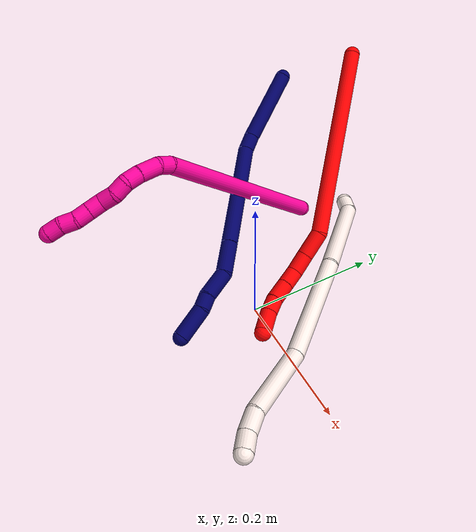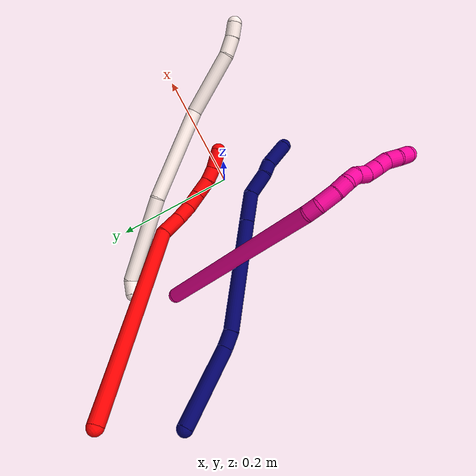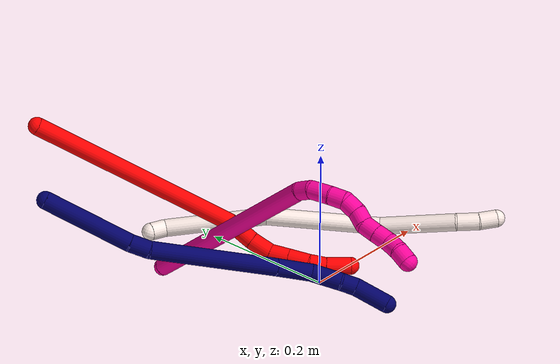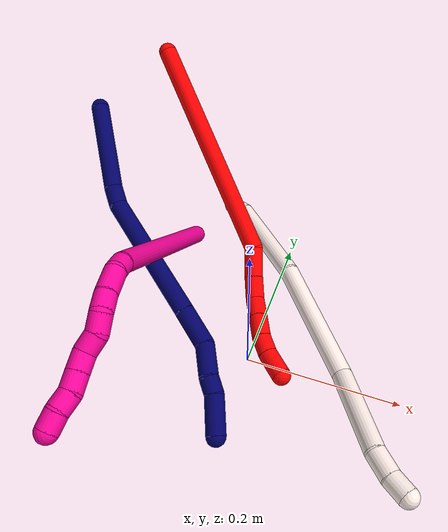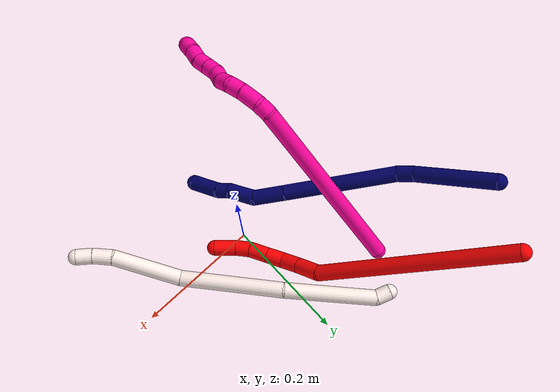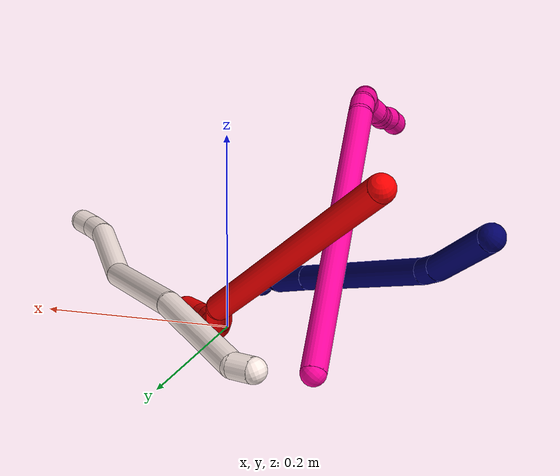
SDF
<sdf version="1.7">
 <world name="default">
  <model name="2">
   <static>0</static>
   <link name="2">
    <collision name="collision-cylinder-e_1_1_4">
     <pose>0.056912 -0.052504 -0.1352 2.77117 0.373935 1.58046</pose>
     <geometry><cylinder><radius>0.0125</radius><length>0.311606</length></cylinder></geometry>
     <surface>
      <friction><ode><mu>1.16</mu><mu2>1.16</mu2><slip1>0</slip1><slip2>0</slip2></ode></friction>
      <contact><ode><kp>1e+06</kp><kd>1</kd><max_vel>0</max_vel><min_depth>0.001</min_depth></ode></contact>
     </surface>
    </collision>
    <visual name="visual-cylinder-e_1_1_4">
     <pose>0.056912 -0.052504 -0.1352 2.77117 0.373935 1.58046</pose>
     <geometry><cylinder><radius>0.0125</radius><length>0.311606</length></cylinder></geometry>
     <material><ambient>1 0 0 1</ambient></material>
    </visual>
    <collision name="collision-cylinder-e_2_4_5">
     <pose>0.113718 -0.1092 -0.290119 2.93216 -0.00525 -0.049944</pose>
     <geometry><cylinder><radius>0.0125</radius><length>0.04032</length></cylinder></geometry>
     <surface>
      <friction><ode><mu>1.16</mu><mu2>1.16</mu2><slip1>0</slip1><slip2>0</slip2></ode></friction>
      <contact><ode><kp>1e+06</kp><kd>1</kd><max_vel>0</max_vel><min_depth>0.001</min_depth></ode></contact>
     </surface>
    </collision>
    <visual name="visual-cylinder-e_2_4_5">
     <pose>0.113718 -0.1092 -0.290119 2.93216 -0.00525 -0.049944</pose>
     <geometry><cylinder><radius>0.0125</radius><length>0.04032</length></cylinder></geometry>
     <material><ambient>1 0 0 1</ambient></material>
    </visual>
    <collision name="collision-cylinder-e_3_5_6">
     <pose>0.113702 -0.118371 -0.324545 2.81514 0.00579 0.035154</pose>
     <geometry><cylinder><radius>0.0125</radius><length>0.031054</length></cylinder></geometry>
     <surface>
      <friction><ode><mu>1.16</mu><mu2>1.16</mu2><slip1>0</slip1><slip2>0</slip2></ode></friction>
      <contact><ode><kp>1e+06</kp><kd>1</kd><max_vel>0</max_vel><min_depth>0.001</min_depth></ode></contact>
     </surface>
    </collision>
    <visual name="visual-cylinder-e_3_5_6">
     <pose>0.113702 -0.118371 -0.324545 2.81514 0.00579 0.035154</pose>
     <geometry><cylinder><radius>0.0125</radius><length>0.031054</length></cylinder></geometry>
     <material><ambient>1 0 0 1</ambient></material>
    </visual>
    <collision name="collision-cylinder-e_4_6_7">
     <pose>0.113038 -0.131911 -0.349971 2.46769 -0.054934 -0.156535</pose>
     <geometry><cylinder><radius>0.0125</radius><length>0.027479</length></cylinder></geometry>
     <surface>
      <friction><ode><mu>1.16</mu><mu2>1.16</mu2><slip1>0</slip1><slip2>0</slip2></ode></friction>
      <contact><ode><kp>1e+06</kp><kd>1</kd><max_vel>0</max_vel><min_depth>0.001</min_depth></ode></contact>
     </surface>
    </collision>
    <visual name="visual-cylinder-e_4_6_7">
     <pose>0.113038 -0.131911 -0.349971 2.46769 -0.054934 -0.156535</pose>
     <geometry><cylinder><radius>0.0125</radius><length>0.027479</length></cylinder></geometry>
     <material><ambient>1 0 0 1</ambient></material>
    </visual>
    <collision name="collision-cylinder-e_5_7_8">
     <pose>0.111442 -0.149664 -0.372385 2.47542 -0.056488 -0.162954</pose>
     <geometry><cylinder><radius>0.0125</radius><length>0.029795</length></cylinder></geometry>
     <surface>
      <friction><ode><mu>1.16</mu><mu2>1.16</mu2><slip1>0</slip1><slip2>0</slip2></ode></friction>
      <contact><ode><kp>1e+06</kp><kd>1</kd><max_vel>0</max_vel><min_depth>0.001</min_depth></ode></contact>
     </surface>
    </collision>
    <visual name="visual-cylinder-e_5_7_8">
     <pose>0.111442 -0.149664 -0.372385 2.47542 -0.056488 -0.162954</pose>
     <geometry><cylinder><radius>0.0125</radius><length>0.029795</length></cylinder></geometry>
     <material><ambient>1 0 0 1</ambient></material>
    </visual>
    <collision name="collision-cylinder-e_6_8_9">
     <pose>0.112231 -0.166586 -0.393238 2.44061 0.135182 0.366188</pose>
     <geometry><cylinder><radius>0.0125</radius><length>0.024192</length></cylinder></geometry>
     <surface>
      <friction><ode><mu>1.16</mu><mu2>1.16</mu2><slip1>0</slip1><slip2>0</slip2></ode></friction>
      <contact><ode><kp>1e+06</kp><kd>1</kd><max_vel>0</max_vel><min_depth>0.001</min_depth></ode></contact>
     </surface>
    </collision>
    <visual name="visual-cylinder-e_6_8_9">
     <pose>0.112231 -0.166586 -0.393238 2.44061 0.135182 0.366188</pose>
     <geometry><cylinder><radius>0.0125</radius><length>0.024192</length></cylinder></geometry>
     <material><ambient>1 0 0 1</ambient></material>
    </visual>
    <collision name="collision-cylinder-e_7_9_2">
     <pose>0.117793 -0.187781 -0.413317 2.25217 0.223019 0.461567</pose>
     <geometry><cylinder><radius>0.0125</radius><length>0.035553</length></cylinder></geometry>
     <surface>
      <friction><ode><mu>1.16</mu><mu2>1.16</mu2><slip1>0</slip1><slip2>0</slip2></ode></friction>
      <contact><ode><kp>1e+06</kp><kd>1</kd><max_vel>0</max_vel><min_depth>0.001</min_depth></ode></contact>
     </surface>
    </collision>
    <visual name="visual-cylinder-e_7_9_2">
     <pose>0.117793 -0.187781 -0.413317 2.25217 0.223019 0.461567</pose>
     <geometry><cylinder><radius>0.0125</radius><length>0.035553</length></cylinder></geometry>
     <material><ambient>1 0 0 1</ambient></material>
    </visual>
    <collision name="collision-sphere-2">
     <pose>0.121725 -0.201246 -0.424237 0 -0 0</pose>
     <geometry><sphere><radius>0.0125</radius></sphere></geometry>
     <surface>
      <friction><ode><mu>1.16</mu><mu2>1.16</mu2><slip1>0</slip1><slip2>0</slip2></ode></friction>
      <contact><ode><kp>1e+06</kp><kd>1</kd><max_vel>0</max_vel><min_depth>0.001</min_depth></ode></contact>
     </surface>
    </collision>
    <visual name="visual-sphere-2">
     <pose>0.121725 -0.201246 -0.424237 0 -0 0</pose>
     <geometry><sphere><radius>0.0125</radius></sphere></geometry>
     <material><ambient>1 0 0 1</ambient></material>
    </visual>
    <collision name="collision-sphere-9">
     <pose>0.113862 -0.174316 -0.402397 0 -0 0</pose>
     <geometry><sphere><radius>0.0125</radius></sphere></geometry>
     <surface>
      <friction><ode><mu>1.16</mu><mu2>1.16</mu2><slip1>0</slip1><slip2>0</slip2></ode></friction>
      <contact><ode><kp>1e+06</kp><kd>1</kd><max_vel>0</max_vel><min_depth>0.001</min_depth></ode></contact>
     </surface>
    </collision>
    <visual name="visual-sphere-9">
     <pose>0.113862 -0.174316 -0.402397 0 -0 0</pose>
     <geometry><sphere><radius>0.0125</radius></sphere></geometry>
     <material><ambient>1 0 0 1</ambient></material>
    </visual>
    <collision name="collision-sphere-4">
     <pose>0.113824 -0.105009 -0.270399 0 -0 0</pose>
     <geometry><sphere><radius>0.0125</radius></sphere></geometry>
     <surface>
      <friction><ode><mu>1.16</mu><mu2>1.16</mu2><slip1>0</slip1><slip2>0</slip2></ode></friction>
      <contact><ode><kp>1e+06</kp><kd>1</kd><max_vel>0</max_vel><min_depth>0.001</min_depth></ode></contact>
     </surface>
    </collision>
    <visual name="visual-sphere-4">
     <pose>0.113824 -0.105009 -0.270399 0 -0 0</pose>
     <geometry><sphere><radius>0.0125</radius></sphere></geometry>
     <material><ambient>1 0 0 1</ambient></material>
    </visual>
    <collision name="collision-sphere-1">
     <geometry><sphere><radius>0.0125</radius></sphere></geometry>
     <surface>
      <friction><ode><mu>1.16</mu><mu2>1.16</mu2><slip1>0</slip1><slip2>0</slip2></ode></friction>
      <contact><ode><kp>1e+06</kp><kd>1</kd><max_vel>0</max_vel><min_depth>0.001</min_depth></ode></contact>
     </surface>
    </collision>
    <visual name="visual-sphere-1">
     <geometry><sphere><radius>0.0125</radius></sphere></geometry>
     <material><ambient>1 0 0 1</ambient></material>
    </visual>
    <collision name="collision-sphere-8">
     <pose>0.110601 -0.158855 -0.384078 0 -0 0</pose>
     <geometry><sphere><radius>0.0125</radius></sphere></geometry>
     <surface>
      <friction><ode><mu>1.16</mu><mu2>1.16</mu2><slip1>0</slip1><slip2>0</slip2></ode></friction>
      <contact><ode><kp>1e+06</kp><kd>1</kd><max_vel>0</max_vel><min_depth>0.001</min_depth></ode></contact>
     </surface>
    </collision>
    <visual name="visual-sphere-8">
     <pose>0.110601 -0.158855 -0.384078 0 -0 0</pose>
     <geometry><sphere><radius>0.0125</radius></sphere></geometry>
     <material><ambient>1 0 0 1</ambient></material>
    </visual>
    <collision name="collision-sphere-5">
     <pose>0.113612 -0.113391 -0.309838 0 -0 0</pose>
     <geometry><sphere><radius>0.0125</radius></sphere></geometry>
     <surface>
      <friction><ode><mu>1.16</mu><mu2>1.16</mu2><slip1>0</slip1><slip2>0</slip2></ode></friction>
      <contact><ode><kp>1e+06</kp><kd>1</kd><max_vel>0</max_vel><min_depth>0.001</min_depth></ode></contact>
     </surface>
    </collision>
    <visual name="visual-sphere-5">
     <pose>0.113612 -0.113391 -0.309838 0 -0 0</pose>
     <geometry><sphere><radius>0.0125</radius></sphere></geometry>
     <material><ambient>1 0 0 1</ambient></material>
    </visual>
    <collision name="collision-sphere-6">
     <pose>0.113792 -0.12335 -0.339251 0 -0 0</pose>
     <geometry><sphere><radius>0.0125</radius></sphere></geometry>
     <surface>
      <friction><ode><mu>1.16</mu><mu2>1.16</mu2><slip1>0</slip1><slip2>0</slip2></ode></friction>
      <contact><ode><kp>1e+06</kp><kd>1</kd><max_vel>0</max_vel><min_depth>0.001</min_depth></ode></contact>
     </surface>
    </collision>
    <visual name="visual-sphere-6">
     <pose>0.113792 -0.12335 -0.339251 0 -0 0</pose>
     <geometry><sphere><radius>0.0125</radius></sphere></geometry>
     <material><ambient>1 0 0 1</ambient></material>
    </visual>
    <collision name="collision-sphere-7">
     <pose>0.112283 -0.140472 -0.360691 0 -0 0</pose>
     <geometry><sphere><radius>0.0125</radius></sphere></geometry>
     <surface>
      <friction><ode><mu>1.16</mu><mu2>1.16</mu2><slip1>0</slip1><slip2>0</slip2></ode></friction>
      <contact><ode><kp>1e+06</kp><kd>1</kd><max_vel>0</max_vel><min_depth>0.001</min_depth></ode></contact>
     </surface>
    </collision>
    <visual name="visual-sphere-7">
     <pose>0.112283 -0.140472 -0.360691 0 -0 0</pose>
     <geometry><sphere><radius>0.0125</radius></sphere></geometry>
     <material><ambient>1 0 0 1</ambient></material>
    </visual>
    <inertial>
     <pose>0.07836 -0.08646 -0.21765 0 -0 0</pose>
     <mass>0.5</mass>
     <inertia>
      <ixx>0.00237</ixx>
      <ixy>0</ixy>
      <ixz>0</ixz>
      <iyy>0.002683</iyy>
      <iyz>0</iyz>
      <izz>-9.4e-05</izz>
     </inertia>
    </inertial>
   </link>
   <pose>-0.23195 0.314606 0.229115 -0.716888 0.343386 0.58934</pose>
  </model>
  <model name="7">
   <static>0</static>
   <link name="7">
    <collision name="collision-cylinder-e_1_1_4">
     <pose>0.042694 -0.023139 0.040736 0.516577 0.739033 0.203935</pose>
     <geometry><cylinder><radius>0.0125</radius><length>0.126769</length></cylinder></geometry>
     <surface>
      <friction><ode><mu>1.16</mu><mu2>1.16</mu2><slip1>0</slip1><slip2>0</slip2></ode></friction>
      <contact><ode><kp>1e+06</kp><kd>1</kd><max_vel>0</max_vel><min_depth>0.001</min_depth></ode></contact>
     </surface>
    </collision>
    <visual name="visual-cylinder-e_1_1_4">
     <pose>0.042694 -0.023139 0.040736 0.516577 0.739033 0.203935</pose>
     <geometry><cylinder><radius>0.0125</radius><length>0.126769</length></cylinder></geometry>
     <material><ambient>0.003922 0 0.403922 1</ambient></material>
    </visual>
    <collision name="collision-cylinder-e_2_4_5">
     <pose>0.095898 -0.051461 0.088917 0.608167 0.858667 0.285386</pose>
     <geometry><cylinder><radius>0.0125</radius><length>0.027768</length></cylinder></geometry>
     <surface>
      <friction><ode><mu>1.16</mu><mu2>1.16</mu2><slip1>0</slip1><slip2>0</slip2></ode></friction>
      <contact><ode><kp>1e+06</kp><kd>1</kd><max_vel>0</max_vel><min_depth>0.001</min_depth></ode></contact>
     </surface>
    </collision>
    <visual name="visual-cylinder-e_2_4_5">
     <pose>0.095898 -0.051461 0.088917 0.608167 0.858667 0.285386</pose>
     <geometry><cylinder><radius>0.0125</radius><length>0.027768</length></cylinder></geometry>
     <material><ambient>0.003922 0 0.403922 1</ambient></material>
    </visual>
    <collision name="collision-cylinder-e_3_5_6">
     <pose>0.183192 -0.094901 0.124327 0.93958 1.01787 0.55209</pose>
     <geometry><cylinder><radius>0.0125</radius><length>0.180459</length></cylinder></geometry>
     <surface>
      <friction><ode><mu>1.16</mu><mu2>1.16</mu2><slip1>0</slip1><slip2>0</slip2></ode></friction>
      <contact><ode><kp>1e+06</kp><kd>1</kd><max_vel>0</max_vel><min_depth>0.001</min_depth></ode></contact>
     </surface>
    </collision>
    <visual name="visual-cylinder-e_3_5_6">
     <pose>0.183192 -0.094901 0.124327 0.93958 1.01787 0.55209</pose>
     <geometry><cylinder><radius>0.0125</radius><length>0.180459</length></cylinder></geometry>
     <material><ambient>0.003922 0 0.403922 1</ambient></material>
    </visual>
    <collision name="collision-cylinder-e_4_6_7">
     <pose>0.281688 -0.144211 0.160617 0.925265 1.00334 0.534019</pose>
     <geometry><cylinder><radius>0.0125</radius><length>0.051494</length></cylinder></geometry>
     <surface>
      <friction><ode><mu>1.16</mu><mu2>1.16</mu2><slip1>0</slip1><slip2>0</slip2></ode></friction>
      <contact><ode><kp>1e+06</kp><kd>1</kd><max_vel>0</max_vel><min_depth>0.001</min_depth></ode></contact>
     </surface>
    </collision>
    <visual name="visual-cylinder-e_4_6_7">
     <pose>0.281688 -0.144211 0.160617 0.925265 1.00334 0.534019</pose>
     <geometry><cylinder><radius>0.0125</radius><length>0.051494</length></cylinder></geometry>
     <material><ambient>0.003922 0 0.403922 1</ambient></material>
    </visual>
    <collision name="collision-cylinder-e_5_7_8">
     <pose>0.320127 -0.157965 0.182168 0.201367 0.891809 0.096508</pose>
     <geometry><cylinder><radius>0.0125</radius><length>0.042987</length></cylinder></geometry>
     <surface>
      <friction><ode><mu>1.16</mu><mu2>1.16</mu2><slip1>0</slip1><slip2>0</slip2></ode></friction>
      <contact><ode><kp>1e+06</kp><kd>1</kd><max_vel>0</max_vel><min_depth>0.001</min_depth></ode></contact>
     </surface>
    </collision>
    <visual name="visual-cylinder-e_5_7_8">
     <pose>0.320127 -0.157965 0.182168 0.201367 0.891809 0.096508</pose>
     <geometry><cylinder><radius>0.0125</radius><length>0.042987</length></cylinder></geometry>
     <material><ambient>0.003922 0 0.403922 1</ambient></material>
    </visual>
    <collision name="collision-cylinder-e_6_8_9">
     <pose>0.345127 -0.164586 0.201145 0.598373 0.871333 0.285211</pose>
     <geometry><cylinder><radius>0.0125</radius><length>0.021626</length></cylinder></geometry>
     <surface>
      <friction><ode><mu>1.16</mu><mu2>1.16</mu2><slip1>0</slip1><slip2>0</slip2></ode></friction>
      <contact><ode><kp>1e+06</kp><kd>1</kd><max_vel>0</max_vel><min_depth>0.001</min_depth></ode></contact>
     </surface>
    </collision>
    <visual name="visual-cylinder-e_6_8_9">
     <pose>0.345127 -0.164586 0.201145 0.598373 0.871333 0.285211</pose>
     <geometry><cylinder><radius>0.0125</radius><length>0.021626</length></cylinder></geometry>
     <material><ambient>0.003922 0 0.403922 1</ambient></material>
    </visual>
    <collision name="collision-cylinder-e_7_9_2">
     <pose>0.369147 -0.174069 0.224754 0.301928 0.699799 0.110909</pose>
     <geometry><cylinder><radius>0.0125</radius><length>0.048897</length></cylinder></geometry>
     <surface>
      <friction><ode><mu>1.16</mu><mu2>1.16</mu2><slip1>0</slip1><slip2>0</slip2></ode></friction>
      <contact><ode><kp>1e+06</kp><kd>1</kd><max_vel>0</max_vel><min_depth>0.001</min_depth></ode></contact>
     </surface>
    </collision>
    <visual name="visual-cylinder-e_7_9_2">
     <pose>0.369147 -0.174069 0.224754 0.301928 0.699799 0.110909</pose>
     <geometry><cylinder><radius>0.0125</radius><length>0.048897</length></cylinder></geometry>
     <material><ambient>0.003922 0 0.403922 1</ambient></material>
    </visual>
    <collision name="collision-sphere-2">
     <pose>0.384894 -0.17963 0.24261 0 -0 0</pose>
     <geometry><sphere><radius>0.0125</radius></sphere></geometry>
     <surface>
      <friction><ode><mu>1.16</mu><mu2>1.16</mu2><slip1>0</slip1><slip2>0</slip2></ode></friction>
      <contact><ode><kp>1e+06</kp><kd>1</kd><max_vel>0</max_vel><min_depth>0.001</min_depth></ode></contact>
     </surface>
    </collision>
    <visual name="visual-sphere-2">
     <pose>0.384894 -0.17963 0.24261 0 -0 0</pose>
     <geometry><sphere><radius>0.0125</radius></sphere></geometry>
     <material><ambient>0.003922 0 0.403922 1</ambient></material>
    </visual>
    <collision name="collision-sphere-9">
     <pose>0.353401 -0.168507 0.206897 0 -0 0</pose>
     <geometry><sphere><radius>0.0125</radius></sphere></geometry>
     <surface>
      <friction><ode><mu>1.16</mu><mu2>1.16</mu2><slip1>0</slip1><slip2>0</slip2></ode></friction>
      <contact><ode><kp>1e+06</kp><kd>1</kd><max_vel>0</max_vel><min_depth>0.001</min_depth></ode></contact>
     </surface>
    </collision>
    <visual name="visual-sphere-9">
     <pose>0.353401 -0.168507 0.206897 0 -0 0</pose>
     <geometry><sphere><radius>0.0125</radius></sphere></geometry>
     <material><ambient>0.003922 0 0.403922 1</ambient></material>
    </visual>
    <collision name="collision-sphere-4">
     <pose>0.085388 -0.046278 0.081471 0 -0 0</pose>
     <geometry><sphere><radius>0.0125</radius></sphere></geometry>
     <surface>
      <friction><ode><mu>1.16</mu><mu2>1.16</mu2><slip1>0</slip1><slip2>0</slip2></ode></friction>
      <contact><ode><kp>1e+06</kp><kd>1</kd><max_vel>0</max_vel><min_depth>0.001</min_depth></ode></contact>
     </surface>
    </collision>
    <visual name="visual-sphere-4">
     <pose>0.085388 -0.046278 0.081471 0 -0 0</pose>
     <geometry><sphere><radius>0.0125</radius></sphere></geometry>
     <material><ambient>0.003922 0 0.403922 1</ambient></material>
    </visual>
    <collision name="collision-sphere-1">
     <geometry><sphere><radius>0.0125</radius></sphere></geometry>
     <surface>
      <friction><ode><mu>1.16</mu><mu2>1.16</mu2><slip1>0</slip1><slip2>0</slip2></ode></friction>
      <contact><ode><kp>1e+06</kp><kd>1</kd><max_vel>0</max_vel><min_depth>0.001</min_depth></ode></contact>
     </surface>
    </collision>
    <visual name="visual-sphere-1">
     <geometry><sphere><radius>0.0125</radius></sphere></geometry>
     <material><ambient>0.003922 0 0.403922 1</ambient></material>
    </visual>
    <collision name="collision-sphere-8">
     <pose>0.336853 -0.160665 0.195394 0 -0 0</pose>
     <geometry><sphere><radius>0.0125</radius></sphere></geometry>
     <surface>
      <friction><ode><mu>1.16</mu><mu2>1.16</mu2><slip1>0</slip1><slip2>0</slip2></ode></friction>
      <contact><ode><kp>1e+06</kp><kd>1</kd><max_vel>0</max_vel><min_depth>0.001</min_depth></ode></contact>
     </surface>
    </collision>
    <visual name="visual-sphere-8">
     <pose>0.336853 -0.160665 0.195394 0 -0 0</pose>
     <geometry><sphere><radius>0.0125</radius></sphere></geometry>
     <material><ambient>0.003922 0 0.403922 1</ambient></material>
    </visual>
    <collision name="collision-sphere-5">
     <pose>0.106408 -0.056645 0.096363 0 -0 0</pose>
     <geometry><sphere><radius>0.0125</radius></sphere></geometry>
     <surface>
      <friction><ode><mu>1.16</mu><mu2>1.16</mu2><slip1>0</slip1><slip2>0</slip2></ode></friction>
      <contact><ode><kp>1e+06</kp><kd>1</kd><max_vel>0</max_vel><min_depth>0.001</min_depth></ode></contact>
     </surface>
    </collision>
    <visual name="visual-sphere-5">
     <pose>0.106408 -0.056645 0.096363 0 -0 0</pose>
     <geometry><sphere><radius>0.0125</radius></sphere></geometry>
     <material><ambient>0.003922 0 0.403922 1</ambient></material>
    </visual>
    <collision name="collision-sphere-6">
     <pose>0.259976 -0.133157 0.152291 0 -0 0</pose>
     <geometry><sphere><radius>0.0125</radius></sphere></geometry>
     <surface>
      <friction><ode><mu>1.16</mu><mu2>1.16</mu2><slip1>0</slip1><slip2>0</slip2></ode></friction>
      <contact><ode><kp>1e+06</kp><kd>1</kd><max_vel>0</max_vel><min_depth>0.001</min_depth></ode></contact>
     </surface>
    </collision>
    <visual name="visual-sphere-6">
     <pose>0.259976 -0.133157 0.152291 0 -0 0</pose>
     <geometry><sphere><radius>0.0125</radius></sphere></geometry>
     <material><ambient>0.003922 0 0.403922 1</ambient></material>
    </visual>
    <collision name="collision-sphere-7">
     <pose>0.3034 -0.155265 0.168943 0 -0 0</pose>
     <geometry><sphere><radius>0.0125</radius></sphere></geometry>
     <surface>
      <friction><ode><mu>1.16</mu><mu2>1.16</mu2><slip1>0</slip1><slip2>0</slip2></ode></friction>
      <contact><ode><kp>1e+06</kp><kd>1</kd><max_vel>0</max_vel><min_depth>0.001</min_depth></ode></contact>
     </surface>
    </collision>
    <visual name="visual-sphere-7">
     <pose>0.3034 -0.155265 0.168943 0 -0 0</pose>
     <geometry><sphere><radius>0.0125</radius></sphere></geometry>
     <material><ambient>0.003922 0 0.403922 1</ambient></material>
    </visual>
    <inertial>
     <pose>0.189829 -0.09555 0.123021 0 -0 0</pose>
     <mass>0.5</mass>
     <inertia>
      <ixx>0.000571</ixx>
      <ixy>0</ixy>
      <ixz>0</ixz>
      <iyy>0.000779</iyy>
      <iyz>0</iyz>
      <izz>-0.000265</izz>
     </inertia>
    </inertial>
   </link>
   <pose>-0.303926 0.225783 0.174409 2.15368 -0.289337 -0.62125</pose>
  </model>
  <model name="11">
   <static>0</static>
   <link name="11">
    <collision name="collision-cylinder-e_1_1_4">
     <pose>0.004371 -0.009724 -0.004441 1.99921 0.388185 0.593667</pose>
     <geometry><cylinder><radius>0.0125</radius><length>0.023098</length></cylinder></geometry>
     <surface>
      <friction><ode><mu>1.16</mu><mu2>1.16</mu2><slip1>0</slip1><slip2>0</slip2></ode></friction>
      <contact><ode><kp>1e+06</kp><kd>1</kd><max_vel>0</max_vel><min_depth>0.001</min_depth></ode></contact>
     </surface>
    </collision>
    <visual name="visual-cylinder-e_1_1_4">
     <pose>0.004371 -0.009724 -0.004441 1.99921 0.388185 0.593667</pose>
     <geometry><cylinder><radius>0.0125</radius><length>0.023098</length></cylinder></geometry>
     <material><ambient>1 0.933333 0.909804 1</ambient></material>
    </visual>
    <collision name="collision-cylinder-e_2_4_5">
     <pose>0.062994 -0.057316 -0.039435 2.24969 0.8397 1.50228</pose>
     <geometry><cylinder><radius>0.0125</radius><length>0.145751</length></cylinder></geometry>
     <surface>
      <friction><ode><mu>1.16</mu><mu2>1.16</mu2><slip1>0</slip1><slip2>0</slip2></ode></friction>
      <contact><ode><kp>1e+06</kp><kd>1</kd><max_vel>0</max_vel><min_depth>0.001</min_depth></ode></contact>
     </surface>
    </collision>
    <visual name="visual-cylinder-e_2_4_5">
     <pose>0.062994 -0.057316 -0.039435 2.24969 0.8397 1.50228</pose>
     <geometry><cylinder><radius>0.0125</radius><length>0.145751</length></cylinder></geometry>
     <material><ambient>1 0.933333 0.909804 1</ambient></material>
    </visual>
    <collision name="collision-cylinder-e_3_5_6">
     <pose>0.182912 -0.140409 -0.088365 1.95675 0.931546 1.28292</pose>
     <geometry><cylinder><radius>0.0125</radius><length>0.163644</length></cylinder></geometry>
     <surface>
      <friction><ode><mu>1.16</mu><mu2>1.16</mu2><slip1>0</slip1><slip2>0</slip2></ode></friction>
      <contact><ode><kp>1e+06</kp><kd>1</kd><max_vel>0</max_vel><min_depth>0.001</min_depth></ode></contact>
     </surface>
    </collision>
    <visual name="visual-cylinder-e_3_5_6">
     <pose>0.182912 -0.140409 -0.088365 1.95675 0.931546 1.28292</pose>
     <geometry><cylinder><radius>0.0125</radius><length>0.163644</length></cylinder></geometry>
     <material><ambient>1 0.933333 0.909804 1</ambient></material>
    </visual>
    <collision name="collision-cylinder-e_4_6_7">
     <pose>0.295622 -0.204369 -0.128476 2.43018 1.02308 1.97237</pose>
     <geometry><cylinder><radius>0.0125</radius><length>0.11021</length></cylinder></geometry>
     <surface>
      <friction><ode><mu>1.16</mu><mu2>1.16</mu2><slip1>0</slip1><slip2>0</slip2></ode></friction>
      <contact><ode><kp>1e+06</kp><kd>1</kd><max_vel>0</max_vel><min_depth>0.001</min_depth></ode></contact>
     </surface>
    </collision>
    <visual name="visual-cylinder-e_4_6_7">
     <pose>0.295622 -0.204369 -0.128476 2.43018 1.02308 1.97237</pose>
     <geometry><cylinder><radius>0.0125</radius><length>0.11021</length></cylinder></geometry>
     <material><ambient>1 0.933333 0.909804 1</ambient></material>
    </visual>
    <collision name="collision-cylinder-e_5_7_8">
     <pose>0.354708 -0.231819 -0.155599 2.1245 0.865813 1.38438</pose>
     <geometry><cylinder><radius>0.0125</radius><length>0.031623</length></cylinder></geometry>
     <surface>
      <friction><ode><mu>1.16</mu><mu2>1.16</mu2><slip1>0</slip1><slip2>0</slip2></ode></friction>
      <contact><ode><kp>1e+06</kp><kd>1</kd><max_vel>0</max_vel><min_depth>0.001</min_depth></ode></contact>
     </surface>
    </collision>
    <visual name="visual-cylinder-e_5_7_8">
     <pose>0.354708 -0.231819 -0.155599 2.1245 0.865813 1.38438</pose>
     <geometry><cylinder><radius>0.0125</radius><length>0.031623</length></cylinder></geometry>
     <material><ambient>1 0.933333 0.909804 1</ambient></material>
    </visual>
    <collision name="collision-cylinder-e_6_8_2">
     <pose>0.374954 -0.248802 -0.166384 2.14915 0.693289 1.17675</pose>
     <geometry><cylinder><radius>0.0125</radius><length>0.025674</length></cylinder></geometry>
     <surface>
      <friction><ode><mu>1.16</mu><mu2>1.16</mu2><slip1>0</slip1><slip2>0</slip2></ode></friction>
      <contact><ode><kp>1e+06</kp><kd>1</kd><max_vel>0</max_vel><min_depth>0.001</min_depth></ode></contact>
     </surface>
    </collision>
    <visual name="visual-cylinder-e_6_8_2">
     <pose>0.374954 -0.248802 -0.166384 2.14915 0.693289 1.17675</pose>
     <geometry><cylinder><radius>0.0125</radius><length>0.025674</length></cylinder></geometry>
     <material><ambient>1 0.933333 0.909804 1</ambient></material>
    </visual>
    <collision name="collision-sphere-2">
     <pose>0.383158 -0.25707 -0.171781 0 -0 0</pose>
     <geometry><sphere><radius>0.0125</radius></sphere></geometry>
     <surface>
      <friction><ode><mu>1.16</mu><mu2>1.16</mu2><slip1>0</slip1><slip2>0</slip2></ode></friction>
      <contact><ode><kp>1e+06</kp><kd>1</kd><max_vel>0</max_vel><min_depth>0.001</min_depth></ode></contact>
     </surface>
    </collision>
    <visual name="visual-sphere-2">
     <pose>0.383158 -0.25707 -0.171781 0 -0 0</pose>
     <geometry><sphere><radius>0.0125</radius></sphere></geometry>
     <material><ambient>1 0.933333 0.909804 1</ambient></material>
    </visual>
    <collision name="collision-sphere-4">
     <pose>0.008743 -0.019447 -0.008882 0 -0 0</pose>
     <geometry><sphere><radius>0.0125</radius></sphere></geometry>
     <surface>
      <friction><ode><mu>1.16</mu><mu2>1.16</mu2><slip1>0</slip1><slip2>0</slip2></ode></friction>
      <contact><ode><kp>1e+06</kp><kd>1</kd><max_vel>0</max_vel><min_depth>0.001</min_depth></ode></contact>
     </surface>
    </collision>
    <visual name="visual-sphere-4">
     <pose>0.008743 -0.019447 -0.008882 0 -0 0</pose>
     <geometry><sphere><radius>0.0125</radius></sphere></geometry>
     <material><ambient>1 0.933333 0.909804 1</ambient></material>
    </visual>
    <collision name="collision-sphere-1">
     <geometry><sphere><radius>0.0125</radius></sphere></geometry>
     <surface>
      <friction><ode><mu>1.16</mu><mu2>1.16</mu2><slip1>0</slip1><slip2>0</slip2></ode></friction>
      <contact><ode><kp>1e+06</kp><kd>1</kd><max_vel>0</max_vel><min_depth>0.001</min_depth></ode></contact>
     </surface>
    </collision>
    <visual name="visual-sphere-1">
     <geometry><sphere><radius>0.0125</radius></sphere></geometry>
     <material><ambient>1 0.933333 0.909804 1</ambient></material>
    </visual>
    <collision name="collision-sphere-8">
     <pose>0.36675 -0.240535 -0.160987 0 -0 0</pose>
     <geometry><sphere><radius>0.0125</radius></sphere></geometry>
     <surface>
      <friction><ode><mu>1.16</mu><mu2>1.16</mu2><slip1>0</slip1><slip2>0</slip2></ode></friction>
      <contact><ode><kp>1e+06</kp><kd>1</kd><max_vel>0</max_vel><min_depth>0.001</min_depth></ode></contact>
     </surface>
    </collision>
    <visual name="visual-sphere-8">
     <pose>0.36675 -0.240535 -0.160987 0 -0 0</pose>
     <geometry><sphere><radius>0.0125</radius></sphere></geometry>
     <material><ambient>1 0.933333 0.909804 1</ambient></material>
    </visual>
    <collision name="collision-sphere-5">
     <pose>0.117246 -0.095185 -0.069989 0 -0 0</pose>
     <geometry><sphere><radius>0.0125</radius></sphere></geometry>
     <surface>
      <friction><ode><mu>1.16</mu><mu2>1.16</mu2><slip1>0</slip1><slip2>0</slip2></ode></friction>
      <contact><ode><kp>1e+06</kp><kd>1</kd><max_vel>0</max_vel><min_depth>0.001</min_depth></ode></contact>
     </surface>
    </collision>
    <visual name="visual-sphere-5">
     <pose>0.117246 -0.095185 -0.069989 0 -0 0</pose>
     <geometry><sphere><radius>0.0125</radius></sphere></geometry>
     <material><ambient>1 0.933333 0.909804 1</ambient></material>
    </visual>
    <collision name="collision-sphere-6">
     <pose>0.248578 -0.185633 -0.106741 0 -0 0</pose>
     <geometry><sphere><radius>0.0125</radius></sphere></geometry>
     <surface>
      <friction><ode><mu>1.16</mu><mu2>1.16</mu2><slip1>0</slip1><slip2>0</slip2></ode></friction>
      <contact><ode><kp>1e+06</kp><kd>1</kd><max_vel>0</max_vel><min_depth>0.001</min_depth></ode></contact>
     </surface>
    </collision>
    <visual name="visual-sphere-6">
     <pose>0.248578 -0.185633 -0.106741 0 -0 0</pose>
     <geometry><sphere><radius>0.0125</radius></sphere></geometry>
     <material><ambient>1 0.933333 0.909804 1</ambient></material>
    </visual>
    <collision name="collision-sphere-7">
     <pose>0.342665 -0.223104 -0.150211 0 -0 0</pose>
     <geometry><sphere><radius>0.0125</radius></sphere></geometry>
     <surface>
      <friction><ode><mu>1.16</mu><mu2>1.16</mu2><slip1>0</slip1><slip2>0</slip2></ode></friction>
      <contact><ode><kp>1e+06</kp><kd>1</kd><max_vel>0</max_vel><min_depth>0.001</min_depth></ode></contact>
     </surface>
    </collision>
    <visual name="visual-sphere-7">
     <pose>0.342665 -0.223104 -0.150211 0 -0 0</pose>
     <geometry><sphere><radius>0.0125</radius></sphere></geometry>
     <material><ambient>1 0.933333 0.909804 1</ambient></material>
    </visual>
    <inertial>
     <pose>0.185278 -0.135595 -0.087325 0 -0 0</pose>
     <mass>0.5</mass>
     <inertia>
      <ixx>0.000533</ixx>
      <ixy>0</ixy>
      <ixz>0</ixz>
      <iyy>0.000891</iyy>
      <iyz>0</iyz>
      <izz>-0.000225</izz>
     </inertia>
    </inertial>
   </link>
   <pose>-0.1022 0.230226 0.040054 2.73404 0.086191 -1.51788</pose>
  </model>
  <model name="18">
   <static>0</static>
   <link name="18">
    <collision name="collision-cylinder-e_1_1_4">
     <pose>0.001916 -0.133952 0.074373 1.06395 0.012503 0.007359</pose>
     <geometry><cylinder><radius>0.0125</radius><length>0.306451</length></cylinder></geometry>
     <surface>
      <friction><ode><mu>1.16</mu><mu2>1.16</mu2><slip1>0</slip1><slip2>0</slip2></ode></friction>
      <contact><ode><kp>1e+06</kp><kd>1</kd><max_vel>0</max_vel><min_depth>0.001</min_depth></ode></contact>
     </surface>
    </collision>
    <visual name="visual-cylinder-e_1_1_4">
     <pose>0.001916 -0.133952 0.074373 1.06395 0.012503 0.007359</pose>
     <geometry><cylinder><radius>0.0125</radius><length>0.306451</length></cylinder></geometry>
     <material><ambient>1 0.007843 0.615686 1</ambient></material>
    </visual>
    <collision name="collision-cylinder-e_2_4_5">
     <pose>0.006833 -0.276659 0.152548 1.16119 0.304681 0.20076</pose>
     <geometry><cylinder><radius>0.0125</radius><length>0.020013</length></cylinder></geometry>
     <surface>
      <friction><ode><mu>1.16</mu><mu2>1.16</mu2><slip1>0</slip1><slip2>0</slip2></ode></friction>
      <contact><ode><kp>1e+06</kp><kd>1</kd><max_vel>0</max_vel><min_depth>0.001</min_depth></ode></contact>
     </surface>
    </collision>
    <visual name="visual-cylinder-e_2_4_5">
     <pose>0.006833 -0.276659 0.152548 1.16119 0.304681 0.20076</pose>
     <geometry><cylinder><radius>0.0125</radius><length>0.020013</length></cylinder></geometry>
     <material><ambient>1 0.007843 0.615686 1</ambient></material>
    </visual>
    <collision name="collision-cylinder-e_3_5_6">
     <pose>0.019001 -0.29701 0.158979 1.34785 0.656764 0.531372</pose>
     <geometry><cylinder><radius>0.0125</radius><length>0.030024</length></cylinder></geometry>
     <surface>
      <friction><ode><mu>1.16</mu><mu2>1.16</mu2><slip1>0</slip1><slip2>0</slip2></ode></friction>
      <contact><ode><kp>1e+06</kp><kd>1</kd><max_vel>0</max_vel><min_depth>0.001</min_depth></ode></contact>
     </surface>
    </collision>
    <visual name="visual-cylinder-e_3_5_6">
     <pose>0.019001 -0.29701 0.158979 1.34785 0.656764 0.531372</pose>
     <geometry><cylinder><radius>0.0125</radius><length>0.030024</length></cylinder></geometry>
     <material><ambient>1 0.007843 0.615686 1</ambient></material>
    </visual>
    <collision name="collision-cylinder-e_4_6_7">
     <pose>0.035793 -0.315839 0.16339 1.32921 0.797096 0.637357</pose>
     <geometry><cylinder><radius>0.0125</radius><length>0.021325</length></cylinder></geometry>
     <surface>
      <friction><ode><mu>1.16</mu><mu2>1.16</mu2><slip1>0</slip1><slip2>0</slip2></ode></friction>
      <contact><ode><kp>1e+06</kp><kd>1</kd><max_vel>0</max_vel><min_depth>0.001</min_depth></ode></contact>
     </surface>
    </collision>
    <visual name="visual-cylinder-e_4_6_7">
     <pose>0.035793 -0.315839 0.16339 1.32921 0.797096 0.637357</pose>
     <geometry><cylinder><radius>0.0125</radius><length>0.021325</length></cylinder></geometry>
     <material><ambient>1 0.007843 0.615686 1</ambient></material>
    </visual>
    <collision name="collision-cylinder-e_5_7_8">
     <pose>0.052573 -0.327764 0.163313 1.94827 1.06697 1.43141</pose>
     <geometry><cylinder><radius>0.0125</radius><length>0.020903</length></cylinder></geometry>
     <surface>
      <friction><ode><mu>1.16</mu><mu2>1.16</mu2><slip1>0</slip1><slip2>0</slip2></ode></friction>
      <contact><ode><kp>1e+06</kp><kd>1</kd><max_vel>0</max_vel><min_depth>0.001</min_depth></ode></contact>
     </surface>
    </collision>
    <visual name="visual-cylinder-e_5_7_8">
     <pose>0.052573 -0.327764 0.163313 1.94827 1.06697 1.43141</pose>
     <geometry><cylinder><radius>0.0125</radius><length>0.020903</length></cylinder></geometry>
     <material><ambient>1 0.007843 0.615686 1</ambient></material>
    </visual>
    <collision name="collision-cylinder-e_6_8_9">
     <pose>0.068447 -0.338676 0.156407 2.25215 0.698073 1.30439</pose>
     <geometry><cylinder><radius>0.0125</radius><length>0.020913</length></cylinder></geometry>
     <surface>
      <friction><ode><mu>1.16</mu><mu2>1.16</mu2><slip1>0</slip1><slip2>0</slip2></ode></friction>
      <contact><ode><kp>1e+06</kp><kd>1</kd><max_vel>0</max_vel><min_depth>0.001</min_depth></ode></contact>
     </surface>
    </collision>
    <visual name="visual-cylinder-e_6_8_9">
     <pose>0.068447 -0.338676 0.156407 2.25215 0.698073 1.30439</pose>
     <geometry><cylinder><radius>0.0125</radius><length>0.020913</length></cylinder></geometry>
     <material><ambient>1 0.007843 0.615686 1</ambient></material>
    </visual>
    <collision name="collision-cylinder-e_7_9_10">
     <pose>0.082843 -0.351422 0.150417 1.71463 0.861175 0.975732</pose>
     <geometry><cylinder><radius>0.0125</radius><length>0.020234</length></cylinder></geometry>
     <surface>
      <friction><ode><mu>1.16</mu><mu2>1.16</mu2><slip1>0</slip1><slip2>0</slip2></ode></friction>
      <contact><ode><kp>1e+06</kp><kd>1</kd><max_vel>0</max_vel><min_depth>0.001</min_depth></ode></contact>
     </surface>
    </collision>
    <visual name="visual-cylinder-e_7_9_10">
     <pose>0.082843 -0.351422 0.150417 1.71463 0.861175 0.975732</pose>
     <geometry><cylinder><radius>0.0125</radius><length>0.020234</length></cylinder></geometry>
     <material><ambient>1 0.007843 0.615686 1</ambient></material>
    </visual>
    <collision name="collision-cylinder-e_8_10_11">
     <pose>0.098194 -0.364428 0.148843 1.66753 0.867191 0.943357</pose>
     <geometry><cylinder><radius>0.0125</radius><length>0.020134</length></cylinder></geometry>
     <surface>
      <friction><ode><mu>1.16</mu><mu2>1.16</mu2><slip1>0</slip1><slip2>0</slip2></ode></friction>
      <contact><ode><kp>1e+06</kp><kd>1</kd><max_vel>0</max_vel><min_depth>0.001</min_depth></ode></contact>
     </surface>
    </collision>
    <visual name="visual-cylinder-e_8_10_11">
     <pose>0.098194 -0.364428 0.148843 1.66753 0.867191 0.943357</pose>
     <geometry><cylinder><radius>0.0125</radius><length>0.020134</length></cylinder></geometry>
     <material><ambient>1 0.007843 0.615686 1</ambient></material>
    </visual>
    <collision name="collision-cylinder-e_9_11_12">
     <pose>0.111395 -0.378938 0.145965 1.84401 0.585289 0.756403</pose>
     <geometry><cylinder><radius>0.0125</radius><length>0.020002</length></cylinder></geometry>
     <surface>
      <friction><ode><mu>1.16</mu><mu2>1.16</mu2><slip1>0</slip1><slip2>0</slip2></ode></friction>
      <contact><ode><kp>1e+06</kp><kd>1</kd><max_vel>0</max_vel><min_depth>0.001</min_depth></ode></contact>
     </surface>
    </collision>
    <visual name="visual-cylinder-e_9_11_12">
     <pose>0.111395 -0.378938 0.145965 1.84401 0.585289 0.756403</pose>
     <geometry><cylinder><radius>0.0125</radius><length>0.020002</length></cylinder></geometry>
     <material><ambient>1 0.007843 0.615686 1</ambient></material>
    </visual>
    <collision name="collision-cylinder-e_10_12_2">
     <pose>0.124057 -0.39315 0.140427 2.05948 0.794709 1.21937</pose>
     <geometry><cylinder><radius>0.0125</radius><length>0.020002</length></cylinder></geometry>
     <surface>
      <friction><ode><mu>1.16</mu><mu2>1.16</mu2><slip1>0</slip1><slip2>0</slip2></ode></friction>
      <contact><ode><kp>1e+06</kp><kd>1</kd><max_vel>0</max_vel><min_depth>0.001</min_depth></ode></contact>
     </surface>
    </collision>
    <visual name="visual-cylinder-e_10_12_2">
     <pose>0.124057 -0.39315 0.140427 2.05948 0.794709 1.21937</pose>
     <geometry><cylinder><radius>0.0125</radius><length>0.020002</length></cylinder></geometry>
     <material><ambient>1 0.007843 0.615686 1</ambient></material>
    </visual>
    <collision name="collision-sphere-2">
     <pose>0.131194 -0.399336 0.137138 0 -0 0</pose>
     <geometry><sphere><radius>0.0125</radius></sphere></geometry>
     <surface>
      <friction><ode><mu>1.16</mu><mu2>1.16</mu2><slip1>0</slip1><slip2>0</slip2></ode></friction>
      <contact><ode><kp>1e+06</kp><kd>1</kd><max_vel>0</max_vel><min_depth>0.001</min_depth></ode></contact>
     </surface>
    </collision>
    <visual name="visual-sphere-2">
     <pose>0.131194 -0.399336 0.137138 0 -0 0</pose>
     <geometry><sphere><radius>0.0125</radius></sphere></geometry>
     <material><ambient>1 0.007843 0.615686 1</ambient></material>
    </visual>
    <collision name="collision-sphere-12">
     <pose>0.11692 -0.386965 0.143716 0 -0 0</pose>
     <geometry><sphere><radius>0.0125</radius></sphere></geometry>
     <surface>
      <friction><ode><mu>1.16</mu><mu2>1.16</mu2><slip1>0</slip1><slip2>0</slip2></ode></friction>
      <contact><ode><kp>1e+06</kp><kd>1</kd><max_vel>0</max_vel><min_depth>0.001</min_depth></ode></contact>
     </surface>
    </collision>
    <visual name="visual-sphere-12">
     <pose>0.11692 -0.386965 0.143716 0 -0 0</pose>
     <geometry><sphere><radius>0.0125</radius></sphere></geometry>
     <material><ambient>1 0.007843 0.615686 1</ambient></material>
    </visual>
    <collision name="collision-sphere-11">
     <pose>0.10587 -0.370911 0.148214 0 -0 0</pose>
     <geometry><sphere><radius>0.0125</radius></sphere></geometry>
     <surface>
      <friction><ode><mu>1.16</mu><mu2>1.16</mu2><slip1>0</slip1><slip2>0</slip2></ode></friction>
      <contact><ode><kp>1e+06</kp><kd>1</kd><max_vel>0</max_vel><min_depth>0.001</min_depth></ode></contact>
     </surface>
    </collision>
    <visual name="visual-sphere-11">
     <pose>0.10587 -0.370911 0.148214 0 -0 0</pose>
     <geometry><sphere><radius>0.0125</radius></sphere></geometry>
     <material><ambient>1 0.007843 0.615686 1</ambient></material>
    </visual>
    <collision name="collision-sphere-10">
     <pose>0.090517 -0.357945 0.149472 0 -0 0</pose>
     <geometry><sphere><radius>0.0125</radius></sphere></geometry>
     <surface>
      <friction><ode><mu>1.16</mu><mu2>1.16</mu2><slip1>0</slip1><slip2>0</slip2></ode></friction>
      <contact><ode><kp>1e+06</kp><kd>1</kd><max_vel>0</max_vel><min_depth>0.001</min_depth></ode></contact>
     </surface>
    </collision>
    <visual name="visual-sphere-10">
     <pose>0.090517 -0.357945 0.149472 0 -0 0</pose>
     <geometry><sphere><radius>0.0125</radius></sphere></geometry>
     <material><ambient>1 0.007843 0.615686 1</ambient></material>
    </visual>
    <collision name="collision-sphere-9">
     <pose>0.075168 -0.344898 0.151362 0 -0 0</pose>
     <geometry><sphere><radius>0.0125</radius></sphere></geometry>
     <surface>
      <friction><ode><mu>1.16</mu><mu2>1.16</mu2><slip1>0</slip1><slip2>0</slip2></ode></friction>
      <contact><ode><kp>1e+06</kp><kd>1</kd><max_vel>0</max_vel><min_depth>0.001</min_depth></ode></contact>
     </surface>
    </collision>
    <visual name="visual-sphere-9">
     <pose>0.075168 -0.344898 0.151362 0 -0 0</pose>
     <geometry><sphere><radius>0.0125</radius></sphere></geometry>
     <material><ambient>1 0.007843 0.615686 1</ambient></material>
    </visual>
    <collision name="collision-sphere-4">
     <pose>0.003832 -0.267903 0.148747 0 -0 0</pose>
     <geometry><sphere><radius>0.0125</radius></sphere></geometry>
     <surface>
      <friction><ode><mu>1.16</mu><mu2>1.16</mu2><slip1>0</slip1><slip2>0</slip2></ode></friction>
      <contact><ode><kp>1e+06</kp><kd>1</kd><max_vel>0</max_vel><min_depth>0.001</min_depth></ode></contact>
     </surface>
    </collision>
    <visual name="visual-sphere-4">
     <pose>0.003832 -0.267903 0.148747 0 -0 0</pose>
     <geometry><sphere><radius>0.0125</radius></sphere></geometry>
     <material><ambient>1 0.007843 0.615686 1</ambient></material>
    </visual>
    <collision name="collision-sphere-1">
     <geometry><sphere><radius>0.0125</radius></sphere></geometry>
     <surface>
      <friction><ode><mu>1.16</mu><mu2>1.16</mu2><slip1>0</slip1><slip2>0</slip2></ode></friction>
      <contact><ode><kp>1e+06</kp><kd>1</kd><max_vel>0</max_vel><min_depth>0.001</min_depth></ode></contact>
     </surface>
    </collision>
    <visual name="visual-sphere-1">
     <geometry><sphere><radius>0.0125</radius></sphere></geometry>
     <material><ambient>1 0.007843 0.615686 1</ambient></material>
    </visual>
    <collision name="collision-sphere-8">
     <pose>0.061726 -0.332454 0.161453 0 -0 0</pose>
     <geometry><sphere><radius>0.0125</radius></sphere></geometry>
     <surface>
      <friction><ode><mu>1.16</mu><mu2>1.16</mu2><slip1>0</slip1><slip2>0</slip2></ode></friction>
      <contact><ode><kp>1e+06</kp><kd>1</kd><max_vel>0</max_vel><min_depth>0.001</min_depth></ode></contact>
     </surface>
    </collision>
    <visual name="visual-sphere-8">
     <pose>0.061726 -0.332454 0.161453 0 -0 0</pose>
     <geometry><sphere><radius>0.0125</radius></sphere></geometry>
     <material><ambient>1 0.007843 0.615686 1</ambient></material>
    </visual>
    <collision name="collision-sphere-5">
     <pose>0.009835 -0.285415 0.15635 0 -0 0</pose>
     <geometry><sphere><radius>0.0125</radius></sphere></geometry>
     <surface>
      <friction><ode><mu>1.16</mu><mu2>1.16</mu2><slip1>0</slip1><slip2>0</slip2></ode></friction>
      <contact><ode><kp>1e+06</kp><kd>1</kd><max_vel>0</max_vel><min_depth>0.001</min_depth></ode></contact>
     </surface>
    </collision>
    <visual name="visual-sphere-5">
     <pose>0.009835 -0.285415 0.15635 0 -0 0</pose>
     <geometry><sphere><radius>0.0125</radius></sphere></geometry>
     <material><ambient>1 0.007843 0.615686 1</ambient></material>
    </visual>
    <collision name="collision-sphere-6">
     <pose>0.028166 -0.308604 0.161607 0 -0 0</pose>
     <geometry><sphere><radius>0.0125</radius></sphere></geometry>
     <surface>
      <friction><ode><mu>1.16</mu><mu2>1.16</mu2><slip1>0</slip1><slip2>0</slip2></ode></friction>
      <contact><ode><kp>1e+06</kp><kd>1</kd><max_vel>0</max_vel><min_depth>0.001</min_depth></ode></contact>
     </surface>
    </collision>
    <visual name="visual-sphere-6">
     <pose>0.028166 -0.308604 0.161607 0 -0 0</pose>
     <geometry><sphere><radius>0.0125</radius></sphere></geometry>
     <material><ambient>1 0.007843 0.615686 1</ambient></material>
    </visual>
    <collision name="collision-sphere-7">
     <pose>0.043421 -0.323073 0.165172 0 -0 0</pose>
     <geometry><sphere><radius>0.0125</radius></sphere></geometry>
     <surface>
      <friction><ode><mu>1.16</mu><mu2>1.16</mu2><slip1>0</slip1><slip2>0</slip2></ode></friction>
      <contact><ode><kp>1e+06</kp><kd>1</kd><max_vel>0</max_vel><min_depth>0.001</min_depth></ode></contact>
     </surface>
    </collision>
    <visual name="visual-sphere-7">
     <pose>0.043421 -0.323073 0.165172 0 -0 0</pose>
     <geometry><sphere><radius>0.0125</radius></sphere></geometry>
     <material><ambient>1 0.007843 0.615686 1</ambient></material>
    </visual>
    <inertial>
     <pose>0.025901 -0.212128 0.105111 0 -0 0</pose>
     <mass>0.5</mass>
     <inertia>
      <ixx>0.002453</ixx>
      <ixy>0</ixy>
      <ixz>0</ixz>
      <iyy>0.001172</iyy>
      <iyz>0</iyz>
      <izz>0.002088</izz>
     </inertia>
    </inertial>
   </link>
   <pose>-0.13957 0.170163 0.021668 -0.573792 0.745491 -0.829987</pose>
  </model>
 </world>
</sdf>
